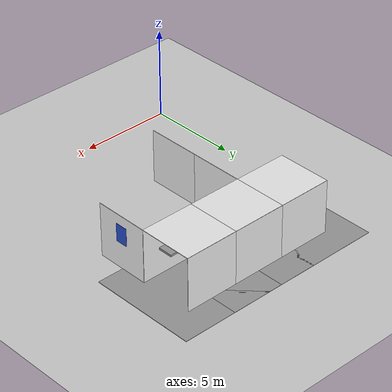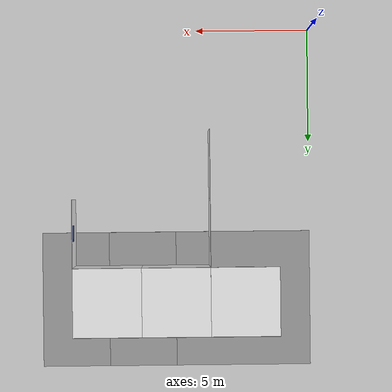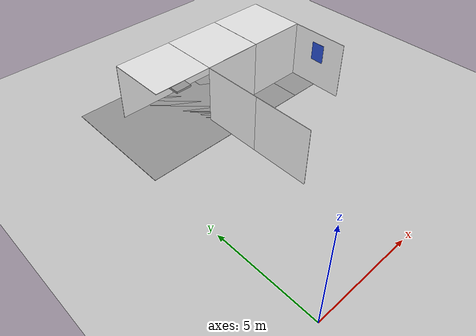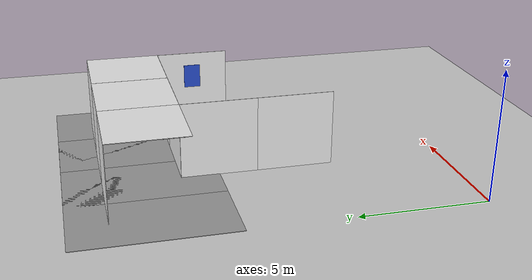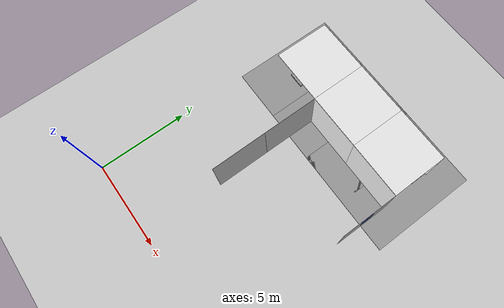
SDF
<sdf version="1.6">
 <world name="default">
  <model name="ground_plane">
   <static>1</static>
   <link name="link">
    <collision name="collision">
     <geometry><plane><normal>0 0 1</normal><size>200 200</size></plane></geometry>
     <surface><friction><ode><mu>100</mu><mu2>50</mu2></ode></friction></surface>
    </collision>
    <visual name="visual">
     <cast_shadows>0</cast_shadows>
     <geometry><plane><normal>0 0 1</normal><size>200 200</size></plane></geometry>
     <material>
      <script><uri>file://media/materials/scripts/gazebo.material</uri><name>Gazebo/Grey</name></script>
     </material>
    </visual>
   </link>
  </model>
  <model name="wall_front_1_2_0_3">
   <static>1</static>
   <pose>4.5 6.0 1.5 0.0 0.0 -1.57</pose>
   <link name="link">
    <collision name="collision"><geometry><box><size>3 0.02 3</size></box></geometry></collision>
    <visual name="visual">
     <material>
      <script><name>Gazebo/White</name><uri>file://media/materials/scripts/gazebo.material</uri></script>
     </material>
     <geometry><box><size>3 0.02 3</size></box></geometry>
    </visual>
   </link>
  </model>
  <model name="wall_right_1_3_0_1">
   <static>1</static>
   <pose>4.5 9.0 1.5 0.0 0.0 1.57</pose>
   <link name="link">
    <collision name="collision"><geometry><box><size>3 0.02 3</size></box></geometry></collision>
    <visual name="visual">
     <material>
      <script><name>Gazebo/White</name><uri>file://media/materials/scripts/gazebo.material</uri></script>
     </material>
     <geometry><box><size>3 0.02 3</size></box></geometry>
    </visual>
   </link>
  </model>
  <model name="wall_front_1_4_0_2">
   <static>1</static>
   <pose>3.0 13.5 1.5 0.0 0.0 0.0</pose>
   <link name="link">
    <collision name="collision"><geometry><box><size>3 0.02 3</size></box></geometry></collision>
    <visual name="visual">
     <material>
      <script><name>Gazebo/White</name><uri>file://media/materials/scripts/gazebo.material</uri></script>
     </material>
     <geometry><box><size>3 0.02 3</size></box></geometry>
    </visual>
   </link>
  </model>
  <model name="wall_top_1_4_0_2">
   <static>1</static>
   <pose>3.0 12.0 3.0 1.57 0.0 0.0</pose>
   <link name="link">
    <collision name="collision"><geometry><box><size>3 0.02 3</size></box></geometry></collision>
    <visual name="visual">
     <material>
      <script><name>Gazebo/White</name><uri>file://media/materials/scripts/gazebo.material</uri></script>
     </material>
     <geometry><box><size>3 0.02 3</size></box></geometry>
    </visual>
   </link>
  </model>
  <model name="ceiling_1_1_4_0_2">
   <pose>3.0 11.0 2.55 0.0 0.0 0.0</pose>
   <link name="link_1">
    <visual name="visual">
     <geometry><box><size>0.8 1 0.1</size></box></geometry>
     <material>
      <script><uri>file://media/materials/scripts/gazebo.material</uri><name>Gazebo/Grey</name></script>
     </material>
    </visual>
    <collision name="collision"><geometry><box><size>0.8 1 0.1</size></box></geometry></collision>
   </link>
   <static>1</static>
  </model>
  <model name="ceiling_1_1_4_1_2">
   <pose>4.0 12.0 2.55 0.0 0.0 1.57</pose>
   <link name="link_1">
    <visual name="visual">
     <geometry><box><size>0.8 1 0.1</size></box></geometry>
     <material>
      <script><uri>file://media/materials/scripts/gazebo.material</uri><name>Gazebo/Grey</name></script>
     </material>
    </visual>
    <collision name="collision"><geometry><box><size>0.8 1 0.1</size></box></geometry></collision>
   </link>
   <static>1</static>
  </model>
  <model name="wall_bottom_1_4_0_2">
   <static>1</static>
   <pose>3.0 12.0 0.0 0.0 0.0 0.0</pose>
   <link name="link">
    <collision name="collision"><geometry><box><size>6 6 0.02</size></box></geometry></collision>
    <visual name="visual">
     <material>
      <script><name>Gazebo/Grey</name><uri>file://media/materials/scripts/gazebo.material</uri></script>
     </material>
     <geometry><box><size>6 6 0.02</size></box></geometry>
    </visual>
   </link>
  </model>
  <model name="wall_right_2_4_0_1">
   <static>1</static>
   <pose>6.0 10.5 1.5 0.0 0.0 0.0</pose>
   <link name="link">
    <collision name="collision"><geometry><box><size>3 0.02 3</size></box></geometry></collision>
    <visual name="visual">
     <material>
      <script><name>Gazebo/White</name><uri>file://media/materials/scripts/gazebo.material</uri></script>
     </material>
     <geometry><box><size>3 0.02 3</size></box></geometry>
    </visual>
   </link>
  </model>
  <model name="wall_left_2_4_0_1">
   <static>1</static>
   <pose>6.0 13.5 1.5 0.0 0.0 0.0</pose>
   <link name="link">
    <collision name="collision"><geometry><box><size>3 0.02 3</size></box></geometry></collision>
    <visual name="visual">
     <material>
      <script><name>Gazebo/White</name><uri>file://media/materials/scripts/gazebo.material</uri></script>
     </material>
     <geometry><box><size>3 0.02 3</size></box></geometry>
    </visual>
   </link>
  </model>
  <model name="wall_top_2_4_0_1">
   <static>1</static>
   <pose>6.0 12.0 3.0 1.57 0.0 -1.57</pose>
   <link name="link">
    <collision name="collision"><geometry><box><size>3 0.02 3</size></box></geometry></collision>
    <visual name="visual">
     <material>
      <script><name>Gazebo/White</name><uri>file://media/materials/scripts/gazebo.material</uri></script>
     </material>
     <geometry><box><size>3 0.02 3</size></box></geometry>
    </visual>
   </link>
  </model>
  <model name="ceiling_1_2_4_0_1">
   <pose>6.0 12.0 2.55 0.0 0.0 -1.57</pose>
   <link name="link_1">
    <visual name="visual">
     <geometry><box><size>0.8 1 0.1</size></box></geometry>
     <material>
      <script><uri>file://media/materials/scripts/gazebo.material</uri><name>Gazebo/Grey</name></script>
     </material>
    </visual>
    <collision name="collision"><geometry><box><size>0.8 1 0.1</size></box></geometry></collision>
   </link>
   <static>1</static>
  </model>
  <model name="ceiling_1_2_4_1_1">
   <pose>5.0 12.0 2.55 0.0 0.0 -1.57</pose>
   <link name="link_1">
    <visual name="visual">
     <geometry><box><size>0.8 1 0.1</size></box></geometry>
     <material>
      <script><uri>file://media/materials/scripts/gazebo.material</uri><name>Gazebo/Grey</name></script>
     </material>
    </visual>
    <collision name="collision"><geometry><box><size>0.8 1 0.1</size></box></geometry></collision>
   </link>
   <static>1</static>
  </model>
  <model name="ceiling_1_2_4_2_1">
   <pose>7.0 12.0 2.55 0.0 0.0 -1.57</pose>
   <link name="link_1">
    <visual name="visual">
     <geometry><box><size>0.8 1 0.1</size></box></geometry>
     <material>
      <script><uri>file://media/materials/scripts/gazebo.material</uri><name>Gazebo/Grey</name></script>
     </material>
    </visual>
    <collision name="collision"><geometry><box><size>0.8 1 0.1</size></box></geometry></collision>
   </link>
   <static>1</static>
  </model>
  <model name="wall_bottom_2_4_0_1">
   <static>1</static>
   <pose>6.0 12.0 0.0 0.0 0.0 -1.57</pose>
   <link name="link">
    <collision name="collision"><geometry><box><size>6 6 0.02</size></box></geometry></collision>
    <visual name="visual">
     <material>
      <script><name>Gazebo/Grey</name><uri>file://media/materials/scripts/gazebo.material</uri></script>
     </material>
     <geometry><box><size>6 6 0.02</size></box></geometry>
    </visual>
   </link>
  </model>
  <model name="wall_right_3_4_0_1">
   <static>1</static>
   <pose>9.0 10.5 1.5 0.0 0.0 0.0</pose>
   <link name="link">
    <collision name="collision"><geometry><box><size>3 0.02 3</size></box></geometry></collision>
    <visual name="visual">
     <material>
      <script><name>Gazebo/White</name><uri>file://media/materials/scripts/gazebo.material</uri></script>
     </material>
     <geometry><box><size>3 0.02 3</size></box></geometry>
    </visual>
   </link>
  </model>
  <model name="wall_left_3_4_0_1">
   <static>1</static>
   <pose>9.0 13.5 1.5 0.0 0.0 0.0</pose>
   <link name="link">
    <collision name="collision"><geometry><box><size>3 0.02 3</size></box></geometry></collision>
    <visual name="visual">
     <material>
      <script><name>Gazebo/White</name><uri>file://media/materials/scripts/gazebo.material</uri></script>
     </material>
     <geometry><box><size>3 0.02 3</size></box></geometry>
    </visual>
   </link>
  </model>
  <model name="wall_top_3_4_0_1">
   <static>1</static>
   <pose>9.0 12.0 3.0 1.57 0.0 -1.57</pose>
   <link name="link">
    <collision name="collision"><geometry><box><size>3 0.02 3</size></box></geometry></collision>
    <visual name="visual">
     <material>
      <script><name>Gazebo/White</name><uri>file://media/materials/scripts/gazebo.material</uri></script>
     </material>
     <geometry><box><size>3 0.02 3</size></box></geometry>
    </visual>
   </link>
  </model>
  <model name="ceiling_1_3_4_0_1">
   <pose>9.0 12.0 2.55 0.0 0.0 -1.57</pose>
   <link name="link_1">
    <visual name="visual">
     <geometry><box><size>0.8 1 0.1</size></box></geometry>
     <material>
      <script><uri>file://media/materials/scripts/gazebo.material</uri><name>Gazebo/Grey</name></script>
     </material>
    </visual>
    <collision name="collision"><geometry><box><size>0.8 1 0.1</size></box></geometry></collision>
   </link>
   <static>1</static>
  </model>
  <model name="ceiling_1_3_4_1_1">
   <pose>8.0 12.0 2.55 0.0 0.0 -1.57</pose>
   <link name="link_1">
    <visual name="visual">
     <geometry><box><size>0.8 1 0.1</size></box></geometry>
     <material>
      <script><uri>file://media/materials/scripts/gazebo.material</uri><name>Gazebo/Grey</name></script>
     </material>
    </visual>
    <collision name="collision"><geometry><box><size>0.8 1 0.1</size></box></geometry></collision>
   </link>
   <static>1</static>
  </model>
  <model name="ceiling_1_3_4_2_1">
   <pose>10.0 12.0 2.55 0.0 0.0 -1.57</pose>
   <link name="link_1">
    <visual name="visual">
     <geometry><box><size>0.8 1 0.1</size></box></geometry>
     <material>
      <script><uri>file://media/materials/scripts/gazebo.material</uri><name>Gazebo/Grey</name></script>
     </material>
    </visual>
    <collision name="collision"><geometry><box><size>0.8 1 0.1</size></box></geometry></collision>
   </link>
   <static>1</static>
  </model>
  <model name="wall_bottom_3_4_0_1">
   <static>1</static>
   <pose>9.0 12.0 0.0 0.0 0.0 -1.57</pose>
   <link name="link">
    <collision name="collision"><geometry><box><size>6 6 0.02</size></box></geometry></collision>
    <visual name="visual">
     <material>
      <script><name>Gazebo/Grey</name><uri>file://media/materials/scripts/gazebo.material</uri></script>
     </material>
     <geometry><box><size>6 6 0.02</size></box></geometry>
    </visual>
   </link>
  </model>
  <model name="wall_right_4_3_0_3">
   <static>1</static>
   <pose>10.5 9.0 1.5 0.0 0.0 4.71</pose>
   <link name="link">
    <collision name="collision"><geometry><box><size>3 0.02 3</size></box></geometry></collision>
    <visual name="visual">
     <material>
      <script><name>Gazebo/White</name><uri>file://media/materials/scripts/gazebo.material</uri></script>
     </material>
     <geometry><box><size>3 0.02 3</size></box></geometry>
    </visual>
   </link>
  </model>
  <model name="panel_4_3_0_3">
   <static>1</static>
   <pose>10.5 9.0 1.95 0.0 0.0 3.14</pose>
   <link name="link">
    <collision name="collision"><geometry><box><size>0.04 0.7 1</size></box></geometry></collision>
    <visual name="visual">
     <material>
      <script><name>Gazebo/Blue</name><uri>file://media/materials/scripts/gazebo.material</uri></script>
     </material>
     <geometry><box><size>0.04 0.7 1</size></box></geometry>
    </visual>
   </link>
  </model>
 </world>
</sdf>
